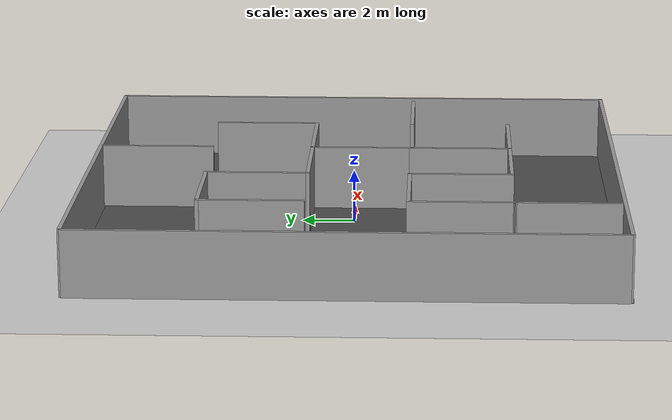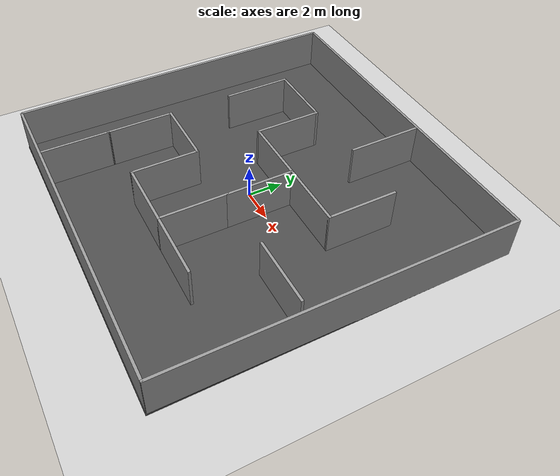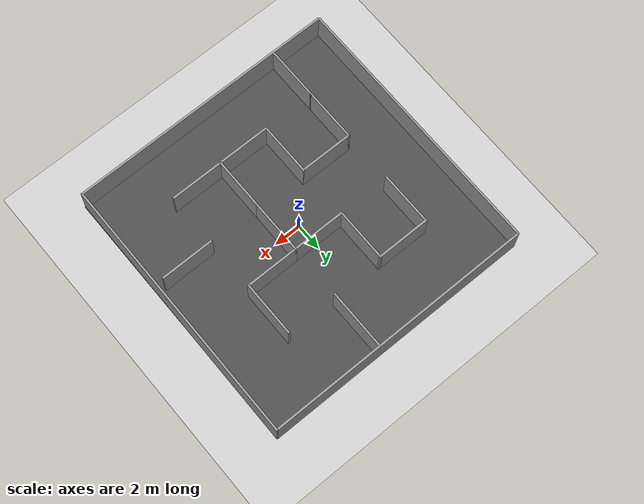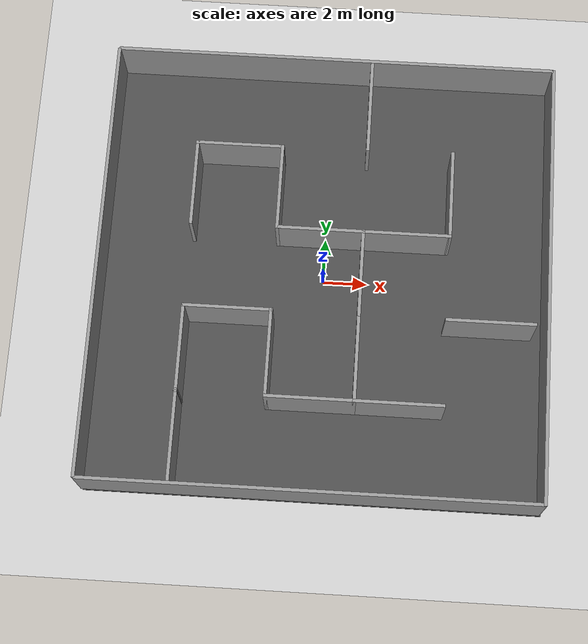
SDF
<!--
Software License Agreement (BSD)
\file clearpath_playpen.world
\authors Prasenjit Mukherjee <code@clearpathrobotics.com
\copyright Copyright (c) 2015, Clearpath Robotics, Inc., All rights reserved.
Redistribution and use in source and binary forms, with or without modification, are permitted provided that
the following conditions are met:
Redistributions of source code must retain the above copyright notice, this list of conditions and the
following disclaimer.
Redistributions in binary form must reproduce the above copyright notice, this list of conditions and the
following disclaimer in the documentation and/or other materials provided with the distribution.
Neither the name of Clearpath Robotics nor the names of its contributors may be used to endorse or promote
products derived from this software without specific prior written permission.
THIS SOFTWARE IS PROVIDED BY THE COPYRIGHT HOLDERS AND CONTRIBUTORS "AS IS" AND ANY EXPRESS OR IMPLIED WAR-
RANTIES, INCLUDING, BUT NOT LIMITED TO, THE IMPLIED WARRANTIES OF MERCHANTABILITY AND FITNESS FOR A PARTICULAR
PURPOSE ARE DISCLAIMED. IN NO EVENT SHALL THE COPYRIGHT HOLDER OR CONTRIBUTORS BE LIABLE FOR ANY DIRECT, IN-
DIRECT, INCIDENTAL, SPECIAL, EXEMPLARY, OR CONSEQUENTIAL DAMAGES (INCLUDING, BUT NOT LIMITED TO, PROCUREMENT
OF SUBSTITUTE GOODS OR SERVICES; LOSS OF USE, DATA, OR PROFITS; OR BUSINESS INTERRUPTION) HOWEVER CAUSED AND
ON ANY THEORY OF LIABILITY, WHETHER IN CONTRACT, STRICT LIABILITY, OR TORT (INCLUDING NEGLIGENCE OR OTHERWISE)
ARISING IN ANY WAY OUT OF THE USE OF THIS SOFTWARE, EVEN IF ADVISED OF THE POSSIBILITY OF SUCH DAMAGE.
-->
<sdf version="1.4">
 <world name="default">
  <light name="sun" type="directional">
   <pose>0 0 10 0 -0 0</pose>
   <diffuse>0.8 0.8 0.8 1</diffuse>
   <specular>0.2 0.2 0.2 1</specular>
   <attenuation>
    <range>1000</range>
    <constant>0.9</constant>
    <linear>0.01</linear>
    <quadratic>0.001</quadratic>
   </attenuation>
   <direction>-0.5 0.1 -0.9</direction>
  </light>
  <model name="ground_plane">
   <static>1</static>
   <link name="link">
    <collision name="collision">
     <geometry><plane><normal>0 0 1</normal><size>100 100</size></plane></geometry>
     <surface><friction><ode><mu>100</mu><mu2>50</mu2></ode></friction></surface>
    </collision>
    <visual name="visual">
     <cast_shadows>0</cast_shadows>
     <geometry><plane><normal>0 0 1</normal><size>100 100</size></plane></geometry>
     <material>
      <script><uri>file://media/materials/scripts/gazebo.material</uri><name>Gazebo/Grey</name></script>
     </material>
    </visual>
    <velocity_decay><linear>0</linear><angular>0</angular></velocity_decay>
   </link>
  </model>
  <physics type="ode">
   <max_step_size>0.01</max_step_size>
   <real_time_factor>1</real_time_factor>
   <real_time_update_rate>100</real_time_update_rate>
   <gravity>0 0 -9.8</gravity>
  </physics>
  <scene><ambient>0.4 0.4 0.4 1</ambient><background>0.7 0.7 0.7 1</background><shadows>1</shadows></scene>
  <model name="asphalt_plane">
   <static>1</static>
   <link name="link">
    <collision name="collision"><geometry><box><size>20 20 0.1</size></box></geometry></collision>
    <visual name="visual">
     <cast_shadows>0</cast_shadows>
     <geometry><box><size>20 20 0.1</size></box></geometry>
     <material>
      <script>
       <uri>model://asphalt_plane/materials/scripts</uri>
       <uri>model://asphalt_plane/materials/textures</uri>
       <name>vrc/asphalt</name>
      </script>
     </material>
    </visual>
    <velocity_decay><linear>0</linear><angular>0</angular></velocity_decay>
   </link>
   <pose>0.076733 -0.110379 0 0 -0 0</pose>
  </model>
  <model name="wall">
   <link name="Wall_0">
    <collision name="Wall_0_Collision">
     <geometry><box><size>20 0.15 2.5</size></box></geometry>
     <pose>0 0 1.25 0 -0 0</pose>
    </collision>
    <visual name="Wall_0_Visual">
     <pose>0 0 1.25 0 -0 0</pose>
     <geometry><box><size>20 0.15 2.5</size></box></geometry>
     <material>
      <script><uri>file://media/materials/scripts/gazebo.material</uri><name>Gazebo/Grey</name></script>
      <ambient>1 1 1 1</ambient>
     </material>
    </visual>
    <pose>-10 0 0 0 -0 1.5708</pose>
   </link>
   <link name="Wall_2">
    <collision name="Wall_2_Collision">
     <geometry><box><size>20 0.15 2.5</size></box></geometry>
     <pose>0 0 1.25 0 -0 0</pose>
    </collision>
    <visual name="Wall_2_Visual">
     <pose>0 0 1.25 0 -0 0</pose>
     <geometry><box><size>20 0.15 2.5</size></box></geometry>
     <material>
      <script><uri>file://media/materials/scripts/gazebo.material</uri><name>Gazebo/Grey</name></script>
      <ambient>1 1 1 1</ambient>
     </material>
    </visual>
    <pose>0 10 0 0 -0 0</pose>
   </link>
   <link name="Wall_3">
    <collision name="Wall_3_Collision">
     <geometry><box><size>20.1121 0.15 2.5</size></box></geometry>
     <pose>0 0 1.25 0 -0 0</pose>
    </collision>
    <visual name="Wall_3_Visual">
     <pose>0 0 1.25 0 -0 0</pose>
     <geometry><box><size>20.1121 0.15 2.5</size></box></geometry>
     <material>
      <script><uri>file://media/materials/scripts/gazebo.material</uri><name>Gazebo/Grey</name></script>
      <ambient>1 1 1 1</ambient>
     </material>
    </visual>
    <pose>10 0 0 0 0 -1.57382</pose>
   </link>
   <link name="Wall_4">
    <collision name="Wall_4_Collision">
     <geometry><box><size>20 0.15 2.5</size></box></geometry>
     <pose>0 0 1.25 0 -0 0</pose>
    </collision>
    <visual name="Wall_4_Visual">
     <pose>0 0 1.25 0 -0 0</pose>
     <geometry><box><size>20 0.15 2.5</size></box></geometry>
     <material>
      <script><uri>file://media/materials/scripts/gazebo.material</uri><name>Gazebo/Grey</name></script>
      <ambient>1 1 1 1</ambient>
     </material>
    </visual>
    <pose>0 -10 0 0 -0 3.14159</pose>
   </link>
   <static>1</static>
  </model>
  <model name="big_maze">
   <pose>1.67513 0.024026 0 0 -0 0</pose>
   <link name="Wall_20">
    <collision name="Wall_20_Collision">
     <geometry><box><size>4 0.15 2.5</size></box></geometry>
     <pose>0 0 1.25 0 -0 0</pose>
    </collision>
    <visual name="Wall_20_Visual">
     <pose>0 0 1.25 0 -0 0</pose>
     <geometry><box><size>4 0.15 2.5</size></box></geometry>
     <material>
      <script><uri>file://media/materials/scripts/gazebo.material</uri><name>Gazebo/Grey</name></script>
      <ambient>1 1 1 1</ambient>
     </material>
    </visual>
    <pose>-7.6804 -4.1 0 0 -0 1.5708</pose>
   </link>
   <link name="Wall_21">
    <collision name="Wall_21_Collision">
     <geometry><box><size>4 0.15 2.5</size></box></geometry>
     <pose>0 0 1.25 0 -0 0</pose>
    </collision>
    <visual name="Wall_21_Visual">
     <pose>0 0 1.25 0 -0 0</pose>
     <geometry><box><size>4 0.15 2.5</size></box></geometry>
     <material>
      <script><uri>file://media/materials/scripts/gazebo.material</uri><name>Gazebo/Grey</name></script>
      <ambient>1 1 1 1</ambient>
     </material>
    </visual>
    <pose>-5.7554 -2.175 0 0 -0 0</pose>
   </link>
   <link name="Wall_22">
    <collision name="Wall_22_Collision">
     <geometry><box><size>4 0.15 2.5</size></box></geometry>
     <pose>0 0 1.25 0 -0 0</pose>
    </collision>
    <visual name="Wall_22_Visual">
     <pose>0 0 1.25 0 -0 0</pose>
     <geometry><box><size>4 0.15 2.5</size></box></geometry>
     <material>
      <script><uri>file://media/materials/scripts/gazebo.material</uri><name>Gazebo/Grey</name></script>
      <ambient>1 1 1 1</ambient>
     </material>
    </visual>
    <pose>-3.8304 -4.1 0 0 0 -1.5708</pose>
   </link>
   <link name="Wall_23">
    <collision name="Wall_23_Collision">
     <geometry><box><size>4 0.15 2.5</size></box></geometry>
     <pose>0 0 1.25 0 -0 0</pose>
    </collision>
    <visual name="Wall_23_Visual">
     <pose>0 0 1.25 0 -0 0</pose>
     <geometry><box><size>4 0.15 2.5</size></box></geometry>
     <material>
      <script><uri>file://media/materials/scripts/gazebo.material</uri><name>Gazebo/Grey</name></script>
      <ambient>1 1 1 1</ambient>
     </material>
    </visual>
    <pose>-1.9054 -6.025 0 0 -0 0</pose>
   </link>
   <link name="Wall_24">
    <collision name="Wall_24_Collision">
     <geometry><box><size>4 0.15 2.5</size></box></geometry>
     <pose>0 0 1.25 0 -0 0</pose>
    </collision>
    <visual name="Wall_24_Visual">
     <pose>0 0 1.25 0 -0 0</pose>
     <geometry><box><size>4 0.15 2.5</size></box></geometry>
     <material>
      <script><uri>file://media/materials/scripts/gazebo.material</uri><name>Gazebo/Grey</name></script>
      <ambient>1 1 1 1</ambient>
     </material>
    </visual>
    <pose>0.019597 -4.1 0 0 -0 1.5708</pose>
   </link>
   <link name="Wall_25">
    <collision name="Wall_25_Collision">
     <geometry><box><size>4 0.15 2.5</size></box></geometry>
     <pose>0 0 1.25 0 -0 0</pose>
    </collision>
    <visual name="Wall_25_Visual">
     <pose>0 0 1.25 0 -0 0</pose>
     <geometry><box><size>4 0.15 2.5</size></box></geometry>
     <material>
      <script><uri>file://media/materials/scripts/gazebo.material</uri><name>Gazebo/Grey</name></script>
      <ambient>1 1 1 1</ambient>
     </material>
    </visual>
    <pose>0.019597 -0.25 0 0 -0 1.5708</pose>
   </link>
   <link name="Wall_27">
    <collision name="Wall_27_Collision">
     <geometry><box><size>4 0.15 2.5</size></box></geometry>
     <pose>0 0 1.25 0 -0 0</pose>
    </collision>
    <visual name="Wall_27_Visual">
     <pose>0 0 1.25 0 -0 0</pose>
     <geometry><box><size>4 0.15 2.5</size></box></geometry>
     <material>
      <script><uri>file://media/materials/scripts/gazebo.material</uri><name>Gazebo/Grey</name></script>
      <ambient>1 1 1 1</ambient>
     </material>
    </visual>
    <pose>-1.9054 1.675 0 0 -0 3.14159</pose>
   </link>
   <link name="Wall_29">
    <collision name="Wall_29_Collision">
     <geometry><box><size>4 0.15 2.5</size></box></geometry>
     <pose>0 0 1.25 0 -0 0</pose>
    </collision>
    <visual name="Wall_29_Visual">
     <pose>0 0 1.25 0 -0 0</pose>
     <geometry><box><size>4 0.15 2.5</size></box></geometry>
     <material>
      <script><uri>file://media/materials/scripts/gazebo.material</uri><name>Gazebo/Grey</name></script>
      <ambient>1 1 1 1</ambient>
     </material>
    </visual>
    <pose>1.9446 -6.025 0 0 -0 0</pose>
   </link>
   <link name="Wall_31">
    <collision name="Wall_31_Collision">
     <geometry><box><size>4 0.15 2.5</size></box></geometry>
     <pose>0 0 1.25 0 -0 0</pose>
    </collision>
    <visual name="Wall_31_Visual">
     <pose>0 0 1.25 0 -0 0</pose>
     <geometry><box><size>4 0.15 2.5</size></box></geometry>
     <material>
      <script><uri>file://media/materials/scripts/gazebo.material</uri><name>Gazebo/Grey</name></script>
      <ambient>1 1 1 1</ambient>
     </material>
    </visual>
    <pose>5.7946 -2.175 0 0 -0 0</pose>
   </link>
   <link name="Wall_33">
    <collision name="Wall_33_Collision">
     <geometry><box><size>4 0.15 2.5</size></box></geometry>
     <pose>0 0 1.25 0 -0 0</pose>
    </collision>
    <visual name="Wall_33_Visual">
     <pose>0 0 1.25 0 -0 0</pose>
     <geometry><box><size>4 0.15 2.5</size></box></geometry>
     <material>
      <script><uri>file://media/materials/scripts/gazebo.material</uri><name>Gazebo/Grey</name></script>
      <ambient>1 1 1 1</ambient>
     </material>
    </visual>
    <pose>1.9446 1.675 0 0 -0 0</pose>
   </link>
   <link name="Wall_35">
    <collision name="Wall_35_Collision">
     <geometry><box><size>4.10554 0.15 2.5</size></box></geometry>
     <pose>0 0 1.25 0 -0 0</pose>
    </collision>
    <visual name="Wall_35_Visual">
     <pose>0 0 1.25 0 -0 0</pose>
     <geometry><box><size>4.10554 0.15 2.5</size></box></geometry>
     <material>
      <script><uri>file://media/materials/scripts/gazebo.material</uri><name>Gazebo/Grey</name></script>
      <ambient>1 1 1 1</ambient>
     </material>
    </visual>
    <pose>3.8696 3.65277 0 0 -0 1.5708</pose>
   </link>
   <link name="Wall_37">
    <collision name="Wall_37_Collision">
     <geometry><box><size>4.39446 0.15 2.5</size></box></geometry>
     <pose>0 0 1.25 0 -0 0</pose>
    </collision>
    <visual name="Wall_37_Visual">
     <pose>0 0 1.25 0 -0 0</pose>
     <geometry><box><size>4.39446 0.15 2.5</size></box></geometry>
     <material>
      <script><uri>file://media/materials/scripts/gazebo.material</uri><name>Gazebo/Grey</name></script>
      <ambient>1 1 1 1</ambient>
     </material>
    </visual>
    <pose>0.019597 7.75277 0 0 -0 1.5708</pose>
   </link>
   <link name="Wall_39">
    <collision name="Wall_39_Collision">
     <geometry><box><size>4 0.15 2.5</size></box></geometry>
     <pose>0 0 1.25 0 -0 0</pose>
    </collision>
    <visual name="Wall_39_Visual">
     <pose>0 0 1.25 0 -0 0</pose>
     <geometry><box><size>4 0.15 2.5</size></box></geometry>
     <material>
      <script><uri>file://media/materials/scripts/gazebo.material</uri><name>Gazebo/Grey</name></script>
      <ambient>1 1 1 1</ambient>
     </material>
    </visual>
    <pose>-3.8304 3.6 0 0 -0 1.5708</pose>
   </link>
   <link name="Wall_4">
    <collision name="Wall_4_Collision">
     <geometry><box><size>0.163988 0.15 2.5</size></box></geometry>
     <pose>0 0 1.25 0 -0 0</pose>
    </collision>
    <visual name="Wall_4_Visual">
     <pose>0 0 1.25 0 -0 0</pose>
     <geometry><box><size>0.163988 0.15 2.5</size></box></geometry>
     <material>
      <script><uri>file://media/materials/scripts/gazebo.material</uri><name>Gazebo/Grey</name></script>
      <ambient>1 1 1 1</ambient>
     </material>
    </visual>
    <pose>-7.68478 -6.01034 0 0 -0 0.894407</pose>
   </link>
   <link name="Wall_40">
    <collision name="Wall_40_Collision">
     <geometry><box><size>4 0.15 2.5</size></box></geometry>
     <pose>0 0 1.25 0 -0 0</pose>
    </collision>
    <visual name="Wall_40_Visual">
     <pose>0 0 1.25 0 -0 0</pose>
     <geometry><box><size>4 0.15 2.5</size></box></geometry>
     <material>
      <script><uri>file://media/materials/scripts/gazebo.material</uri><name>Gazebo/Grey</name></script>
      <ambient>1 1 1 1</ambient>
     </material>
    </visual>
    <pose>-5.7554 5.525 0 0 -0 3.14159</pose>
   </link>
   <link name="Wall_41">
    <collision name="Wall_41_Collision">
     <geometry><box><size>4 0.15 2.5</size></box></geometry>
     <pose>0 0 1.25 0 -0 0</pose>
    </collision>
    <visual name="Wall_41_Visual">
     <pose>0 0 1.25 0 -0 0</pose>
     <geometry><box><size>4 0.15 2.5</size></box></geometry>
     <material>
      <script><uri>file://media/materials/scripts/gazebo.material</uri><name>Gazebo/Grey</name></script>
      <ambient>1 1 1 1</ambient>
     </material>
    </visual>
    <pose>-7.6804 3.6 0 0 0 -1.5708</pose>
   </link>
   <link name="Wall_43">
    <collision name="Wall_43_Collision">
     <geometry><box><size>4 0.15 2.5</size></box></geometry>
     <pose>0 0 1.25 0 -0 0</pose>
    </collision>
    <visual name="Wall_43_Visual">
     <pose>0 0 1.25 0 -0 0</pose>
     <geometry><box><size>4 0.15 2.5</size></box></geometry>
     <material>
      <script><uri>file://media/materials/scripts/gazebo.material</uri><name>Gazebo/Grey</name></script>
      <ambient>1 1 1 1</ambient>
     </material>
    </visual>
    <pose>-7.6804 -7.95 0 0 0 -1.5708</pose>
   </link>
   <static>1</static>
  </model>
 </world>
</sdf>
